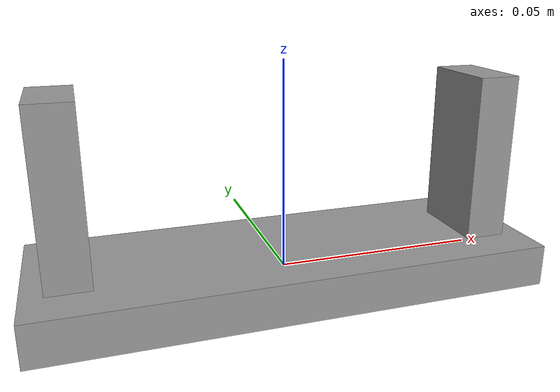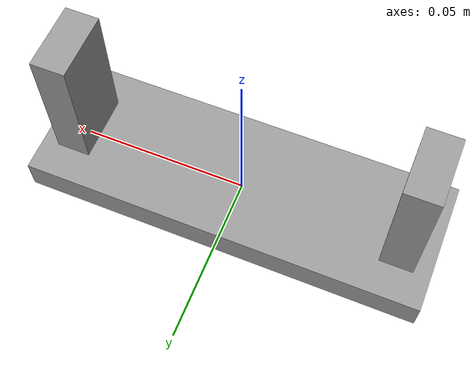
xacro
<?xml version="1.0"?>

<robot  xmlns:xacro="http://www.ros.org/wiki/xacro">
    <!-- XACRO definitions -->
    <xacro:property name="gripper_base_length" value="0.12"/>
    <xacro:property name="gripper_base_width" value="0.04"/>
    <xacro:property name="gripper_base_height" value="0.01"/>

    <xacro:property name="gripper_finger_length" value="0.01"/>
    <xacro:property name="gripper_finger_width" value="0.02"/>
    <xacro:property name="gripper_finger_height" value="0.04"/>

    <xacro:property name="gripper_finger_offset" value="0.05"/>

    <xacro:macro name="gripper_finger" params="name">

        <link name="${name}_gripper_finger">
            <visual>
                <origin xyz="0.0 0.0 ${gripper_finger_height/2.0}" rpy="0.0 0.0 0.0"/>
                <geometry>
                    <box size="${gripper_finger_length} ${gripper_finger_width} ${gripper_finger_height}"/>
                </geometry>
                <material name="grey"/>

            </visual>
            <collision>
                <origin xyz="0.0 0.0 ${gripper_finger_height/2.0}" rpy="0.0 0.0 0.0"/>
                <geometry>
                    <box size="${gripper_finger_length} ${gripper_finger_width} ${gripper_finger_height}"/>
                </geometry>
            </collision>

        </link>
    </xacro:macro>

    <link name="gripper_base">
<visual name="">
            <origin xyz="0.0 0.0 0.0" rpy="0.0 0.0 0.0"/>
            <geometry>
                <box size="${gripper_base_length} ${gripper_base_width} ${gripper_base_height}"/>
            </geometry>
            <material name="grey"/>
        </visual>
        <collision>
            <origin xyz="0.0 0.0 0.0" rpy="0.0 0.0 0.0"/>
            <geometry>
                <box size="${gripper_base_length} ${gripper_base_width} ${gripper_base_height}"/>
            </geometry>
        </collision>
    </link>

    <xacro:gripper_finger name="left"/>
    <xacro:gripper_finger name="right"/>

    <joint name="gripper_base_left_finger" type="prismatic">
        <origin xyz="-${gripper_finger_offset} 0.0 ${gripper_base_height/2.0}" rpy="0.0 0.0 0.0"/>
        <parent link="gripper_base"/>
        <child link="left_gripper_finger"/>
        <axis xyz="1.0 0.0 0.0"/>
        <limit lower="0.0" upper="0.045" effort="0.0" velocity="0.0"/>

    </joint>

    <joint name="gripper_base_right_finger" type="prismatic">
        <origin xyz="${gripper_finger_offset} 0.0 ${gripper_base_height/2.0}" rpy="0.0 0.0 0.0"/>
        <parent link="gripper_base"/>
        <child link="right_gripper_finger"/>
        <axis xyz="1.0 0.0 0.0"/>
        <limit lower="0.0" upper="-0.045" effort="0.0" velocity="0.0"/>
        <mimic joint="gripper_base_left_finger" multiplier="-1.0"/>

    </joint>

</robot>
